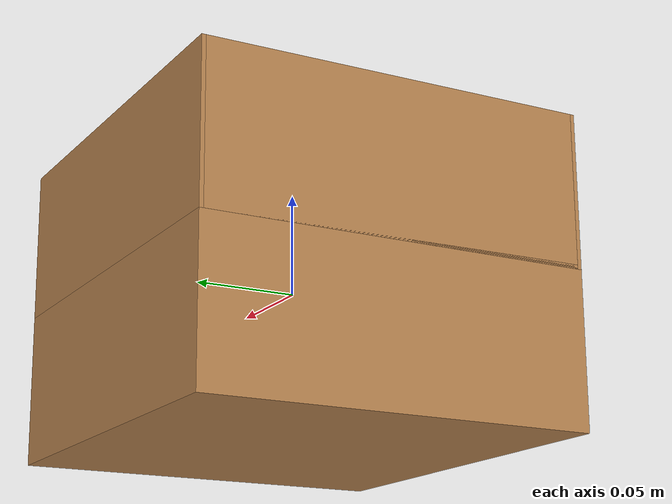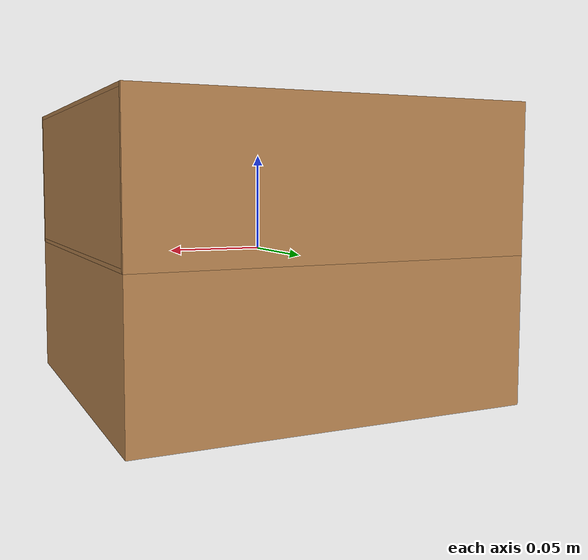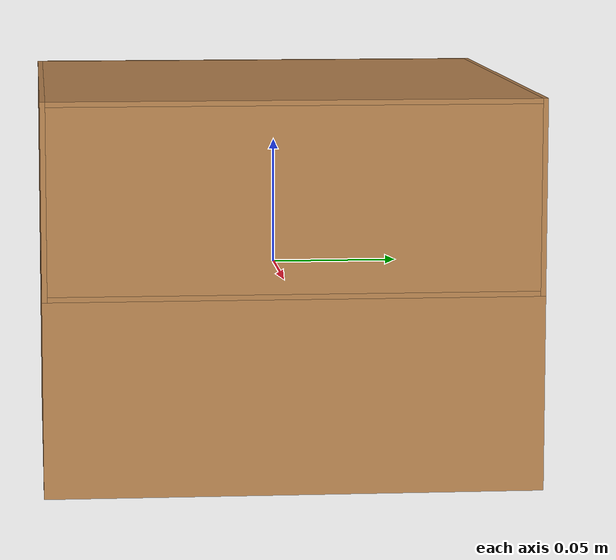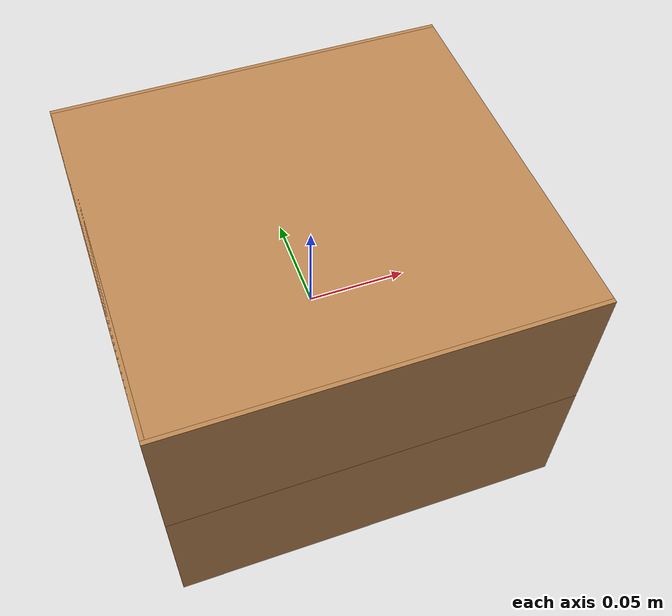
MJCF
<?xml version="1.0" encoding="utf-8"?>
<mujoco model="cabinet">
    <asset>
        <texture file="../textures/red-wood.png" type="cube" name="red-wood"/>
        <material name="red-wood"  reflectance="1.0" shininess="1.0" specular="0.4" texrepeat="1 1" texture="red-wood" texuniform="true"/>
    </asset>
  <worldbody>
      <body>
          <body name="object" pos="0.0 0 0">
              <body name="base" pos="0 0 0" quat="1 0 0 0">
                  <inertial pos="0 0 -0.0375" quat="0.5 0.5 0.5 0.5" mass="2.0" diaginertia="0.5 0.5 0.5" />
                  <geom material="red-wood" pos="0.0 0 -0.0375" size="0.1 0.095 0.0375" group="1" type="box" mass=".05"/>

                  <geom material="red-wood" pos="-0.099 0 0.0375" size="0.001 0.093 0.0375" group="1" type="box" mass=".05"/>
                  <geom material="red-wood" pos="0 0.094 0.0375" size="0.1 0.001 0.0375" group="1" type="box" mass=".05"/>
                  <geom material="red-wood" pos="0 -0.094 0.0375" size="0.1 0.001 0.0375" group="1" type="box" mass=".05"/>
                  <geom material="red-wood" pos="0 0 0.074" size="0.1 0.093 0.001" group="1" type="box" mass=".05"/>
                  <geom material="red-wood" pos="0 0 0.001" size="0.1 0.093 0.001" group="1" type="box" mass=".05"/>

                  <body name="drawer_link" pos="0 0 0">
                          <inertial pos="0 0 0.0375" quat="0.5 0.5 0.5 0.5" mass="0.2" diaginertia="0.5 0.5 0.5" />

                      <joint type="slide" range="0 0.14" axis="1 0 0"
                      name="goal_slidey" pos="0 0 0" damping="10.0"/>

                      <geom material="red-wood" pos="0.099 0 0.0375" size="0.001 0.093 0.0355" group="1" type="box" mass=".1"/>
                      <geom material="red-wood" pos="0.0 0.092 0.032" size="0.098 0.001 0.03" group="1" type="box" mass=".04"/>
                      <geom material="red-wood" pos="0.0 -0.092 0.032" size="0.098 0.001 0.03" group="1" type="box" mass=".04"/>
                      <geom material="red-wood" pos="0.0 0 0.003" size="0.098 0.091 0.001" group="1" type="box" mass=".04"/>
                  </body>
              </body>
          </body>
          <site name="bottom_site" pos="0 0 -0.075" rgba="0 0 0 0" size="0.005"/>
          <site name="top_site" pos="0 0 0.075" rgba="0 0 0 0" size="0.005"/>
          <site name="horizontal_radius_site" pos="0.3 0 0" rgba="0 0 0 0" size="0.1"/>
      </body>
    </worldbody>
</mujoco>
